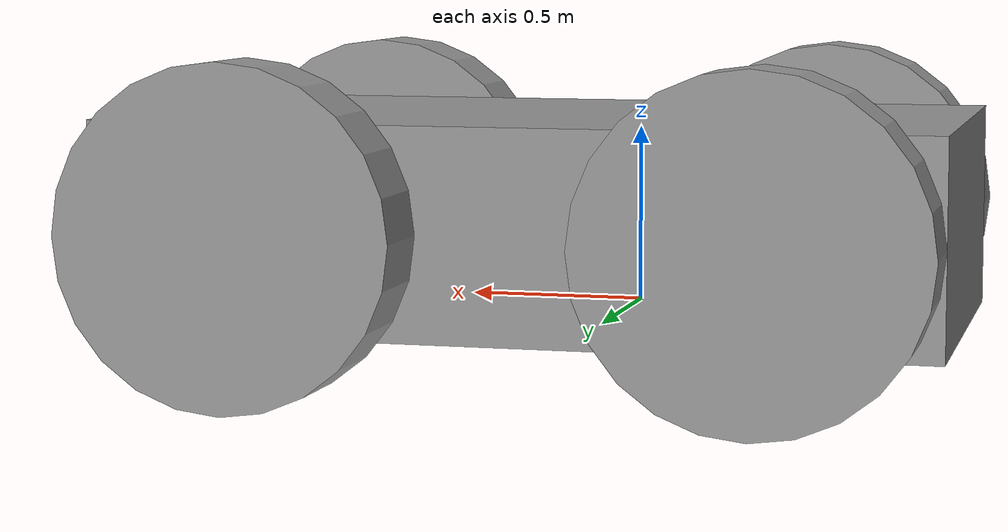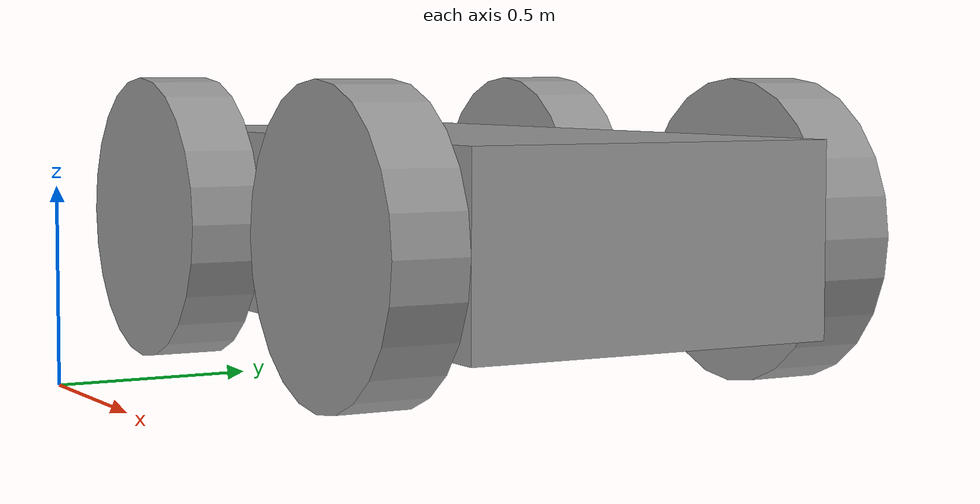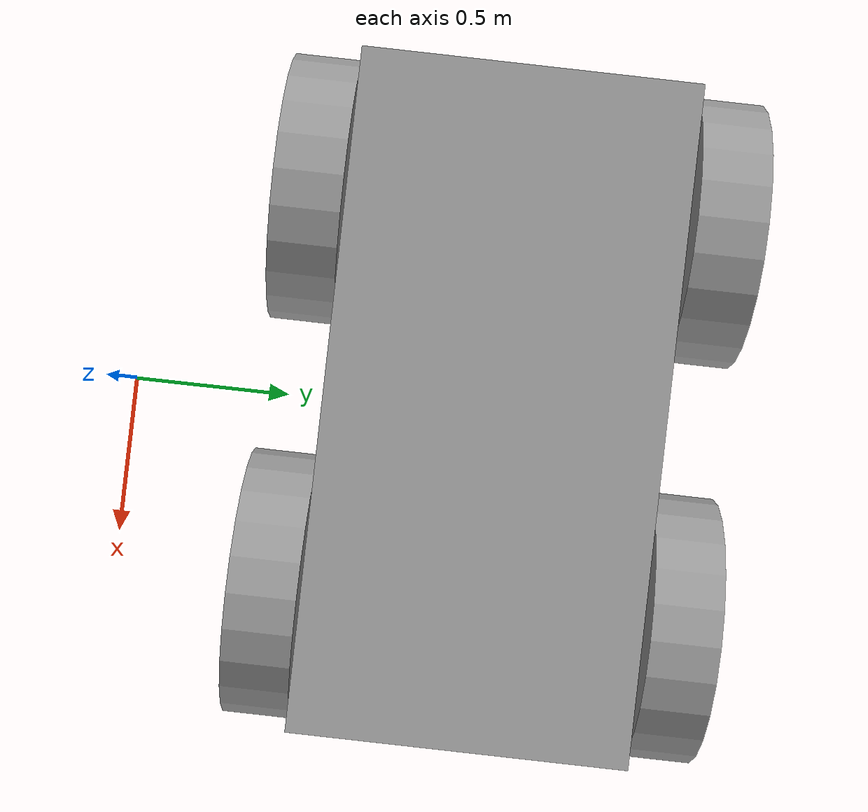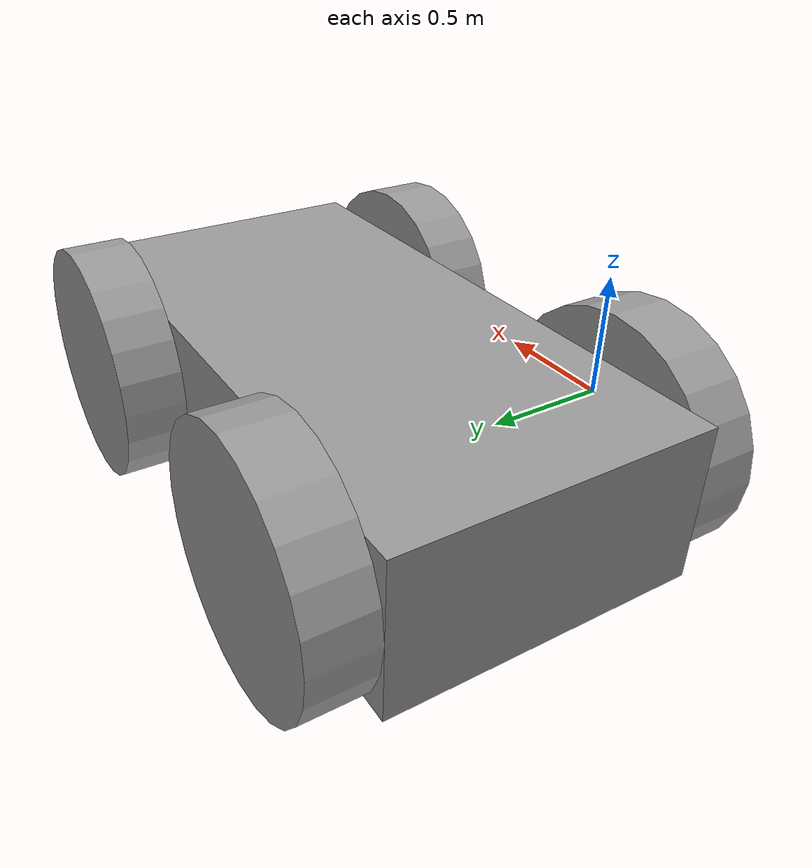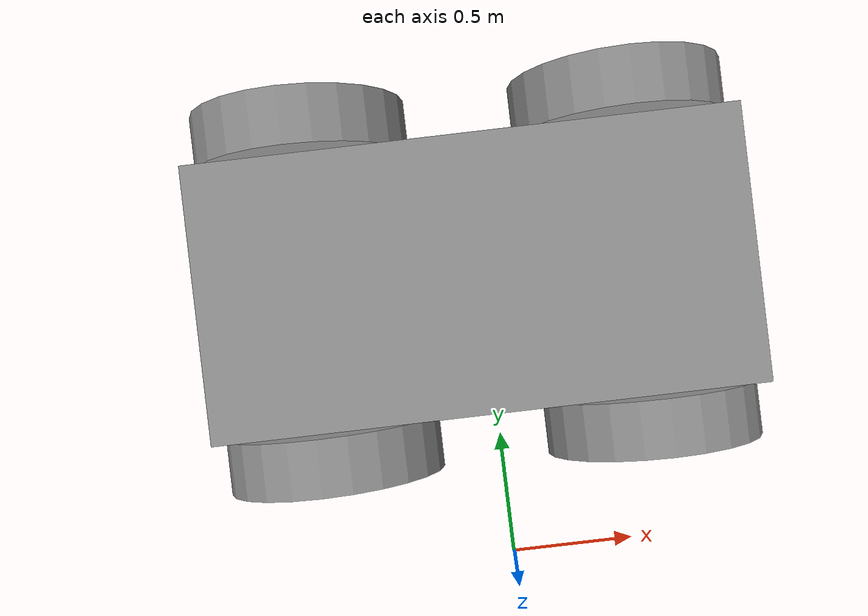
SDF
<?xml version='1.0'?>
<sdf version='1.6'>
  <model name='fourwheeled'>
    <link name='chasis'>
      <pose frame=''>-0.029032 1.14923 0.369998 0 -0 0</pose>
      <inertial>
        <mass>1</mass>
        <inertia>
          <ixx>0.166667</ixx>
          <ixy>0</ixy>
          <ixz>0</ixz>
          <iyy>0.166667</iyy>
          <iyz>0</iyz>
          <izz>0.166667</izz>
        </inertia>
        <pose frame=''>0 0 0 0 -0 0</pose>
      </inertial>
      <gravity>1</gravity>
      <self_collide>0</self_collide>
      <kinematic>0</kinematic>
      <visual name='visual'>
        <pose frame=''>0 0 0 0 -0 0</pose>
        <geometry>
          <box>
            <size>2 1 0.5</size>
          </box>
        </geometry>
        <material>
          <lighting>1</lighting>
          <script>
            <uri>file://media/materials/scripts/gazebo.material</uri>
            <name>Gazebo/Grey</name>
          </script>
          <shader type='pixel'>
            <normal_map>__default__</normal_map>
          </shader>
          <ambient>0.3 0.3 0.3 1</ambient>
          <diffuse>0.7 0.7 0.7 1</diffuse>
          <specular>0.01 0.01 0.01 1</specular>
          <emissive>0 0 0 1</emissive>
        </material>
        <transparency>0</transparency>
        <cast_shadows>1</cast_shadows>
      </visual>
      <collision name='collision'>
        <laser_retro>0</laser_retro>
        <max_contacts>10</max_contacts>
        <pose frame=''>0 0 0 0 -0 0</pose>
        <geometry>
          <box>
            <size>2 1 0.5</size>
          </box>
        </geometry>
        <surface>
          <friction>
            <ode>
              <mu>1</mu>
              <mu2>1</mu2>
              <fdir1>0 0 0</fdir1>
              <slip1>0</slip1>
              <slip2>0</slip2>
            </ode>
            <torsional>
              <coefficient>1</coefficient>
              <patch_radius>0</patch_radius>
              <surface_radius>0</surface_radius>
              <use_patch_radius>1</use_patch_radius>
              <ode>
                <slip>0</slip>
              </ode>
            </torsional>
          </friction>
          <bounce>
            <restitution_coefficient>0</restitution_coefficient>
            <threshold>1e+06</threshold>
          </bounce>
          <contact>
            <collide_without_contact>0</collide_without_contact>
            <collide_without_contact_bitmask>1</collide_without_contact_bitmask>
            <collide_bitmask>1</collide_bitmask>
            <ode>
              <soft_cfm>0</soft_cfm>
              <soft_erp>0.2</soft_erp>
              <kp>1e+13</kp>
              <kd>1</kd>
              <max_vel>0.01</max_vel>
              <min_depth>0</min_depth>
            </ode>
            <bullet>
              <split_impulse>1</split_impulse>
              <split_impulse_penetration_threshold>-0.01</split_impulse_penetration_threshold>
              <soft_cfm>0</soft_cfm>
              <soft_erp>0.2</soft_erp>
              <kp>1e+13</kp>
              <kd>1</kd>
            </bullet>
          </contact>
        </surface>
      </collision>
    </link>
    <link name='leftbackwheel'>
      <pose frame=''>0.570968 0.549188 0.369996 1.5707 -0 0</pose>
      <inertial>
        <mass>1</mass>
        <inertia>
          <ixx>0.145833</ixx>
          <ixy>0</ixy>
          <ixz>0</ixz>
          <iyy>0.145833</iyy>
          <iyz>0</iyz>
          <izz>0.125</izz>
        </inertia>
        <pose frame=''>0 0 0 0 -0 0</pose>
      </inertial>
      <gravity>1</gravity>
      <self_collide>0</self_collide>
      <kinematic>0</kinematic>
      <visual name='visual'>
        <pose frame=''>0 0 0 0 -0 0</pose>
        <geometry>
          <cylinder>
            <radius>0.4</radius>
            <length>0.2</length>
          </cylinder>
        </geometry>
        <material>
          <lighting>1</lighting>
          <script>
            <uri>file://media/materials/scripts/gazebo.material</uri>
            <name>Gazebo/Grey</name>
          </script>
          <shader type='pixel'>
            <normal_map>__default__</normal_map>
          </shader>
          <ambient>0.3 0.3 0.3 1</ambient>
          <diffuse>0.7 0.7 0.7 1</diffuse>
          <specular>0.01 0.01 0.01 1</specular>
          <emissive>0 0 0 1</emissive>
        </material>
        <transparency>0</transparency>
        <cast_shadows>1</cast_shadows>
      </visual>
      <collision name='collision'>
        <laser_retro>0</laser_retro>
        <max_contacts>10</max_contacts>
        <pose frame=''>0 0 0 0 -0 0</pose>
        <geometry>
          <cylinder>
            <radius>0.4</radius>
            <length>0.2</length>
          </cylinder>
        </geometry>
        <surface>
          <friction>
            <ode>
              <mu>1</mu>
              <mu2>1</mu2>
              <fdir1>0 0 0</fdir1>
              <slip1>0</slip1>
              <slip2>0</slip2>
            </ode>
            <torsional>
              <coefficient>1</coefficient>
              <patch_radius>0</patch_radius>
              <surface_radius>0</surface_radius>
              <use_patch_radius>1</use_patch_radius>
              <ode>
                <slip>0</slip>
              </ode>
            </torsional>
          </friction>
          <bounce>
            <restitution_coefficient>0</restitution_coefficient>
            <threshold>1e+06</threshold>
          </bounce>
          <contact>
            <collide_without_contact>0</collide_without_contact>
            <collide_without_contact_bitmask>1</collide_without_contact_bitmask>
            <collide_bitmask>1</collide_bitmask>
            <ode>
              <soft_cfm>0</soft_cfm>
              <soft_erp>0.2</soft_erp>
              <kp>1e+13</kp>
              <kd>1</kd>
              <max_vel>0.01</max_vel>
              <min_depth>0</min_depth>
            </ode>
            <bullet>
              <split_impulse>1</split_impulse>
              <split_impulse_penetration_threshold>-0.01</split_impulse_penetration_threshold>
              <soft_cfm>0</soft_cfm>
              <soft_erp>0.2</soft_erp>
              <kp>1e+13</kp>
              <kd>1</kd>
            </bullet>
          </contact>
        </surface>
      </collision>
    </link>
    <link name='rightfrontwheel'>
      <pose frame=''>-0.629032 1.749188 0.369998 1.5707 -0 0</pose>
      <inertial>
        <mass>1</mass>
        <inertia>
          <ixx>0.145833</ixx>
          <ixy>0</ixy>
          <ixz>0</ixz>
          <iyy>0.145833</iyy>
          <iyz>0</iyz>
          <izz>0.125</izz>
        </inertia>
        <pose frame=''>0 0 0 0 -0 0</pose>
      </inertial>
      <self_collide>0</self_collide>
      <kinematic>0</kinematic>
      <visual name='visual'>
        <pose frame=''>0 0 0 0 -0 0</pose>
        <geometry>
          <cylinder>
            <radius>0.4</radius>
            <length>0.2</length>
          </cylinder>
        </geometry>
        <material>
          <lighting>1</lighting>
          <script>
            <uri>file://media/materials/scripts/gazebo.material</uri>
            <name>Gazebo/Grey</name>
          </script>
          <shader type='pixel'>
            <normal_map>__default__</normal_map>
          </shader>
          <ambient>0.3 0.3 0.3 1</ambient>
          <diffuse>0.7 0.7 0.7 1</diffuse>
          <specular>0.01 0.01 0.01 1</specular>
          <emissive>0 0 0 1</emissive>
        </material>
        <transparency>0</transparency>
        <cast_shadows>1</cast_shadows>
      </visual>
      <collision name='collision'>
        <laser_retro>0</laser_retro>
        <max_contacts>10</max_contacts>
        <pose frame=''>0 0 0 0 -0 0</pose>
        <geometry>
          <cylinder>
            <radius>0.4</radius>
            <length>0.2</length>
          </cylinder>
        </geometry>
        <surface>
          <friction>
            <ode>
              <mu>1</mu>
              <mu2>1</mu2>
              <fdir1>0 0 0</fdir1>
              <slip1>0</slip1>
              <slip2>0</slip2>
            </ode>
            <torsional>
              <coefficient>1</coefficient>
              <patch_radius>0</patch_radius>
              <surface_radius>0</surface_radius>
              <use_patch_radius>1</use_patch_radius>
              <ode>
                <slip>0</slip>
              </ode>
            </torsional>
          </friction>
          <bounce>
            <restitution_coefficient>0</restitution_coefficient>
            <threshold>1e+06</threshold>
          </bounce>
          <contact>
            <collide_without_contact>0</collide_without_contact>
            <collide_without_contact_bitmask>1</collide_without_contact_bitmask>
            <collide_bitmask>1</collide_bitmask>
            <ode>
              <soft_cfm>0</soft_cfm>
              <soft_erp>0.2</soft_erp>
              <kp>1e+13</kp>
              <kd>1</kd>
              <max_vel>0.01</max_vel>
              <min_depth>0</min_depth>
            </ode>
            <bullet>
              <split_impulse>1</split_impulse>
              <split_impulse_penetration_threshold>-0.01</split_impulse_penetration_threshold>
              <soft_cfm>0</soft_cfm>
              <soft_erp>0.2</soft_erp>
              <kp>1e+13</kp>
              <kd>1</kd>
            </bullet>
          </contact>
        </surface>
      </collision>
    </link>
    <link name='leftfrontwheel'>
      <pose frame=''>-0.629032 0.549188 0.369998 1.5707 -0 0</pose>
      <inertial>
        <mass>1</mass>
        <inertia>
          <ixx>0.145833</ixx>
          <ixy>0</ixy>
          <ixz>0</ixz>
          <iyy>0.145833</iyy>
          <iyz>0</iyz>
          <izz>0.125</izz>
        </inertia>
        <pose frame=''>0 0 0 0 -0 0</pose>
      </inertial>
      <self_collide>0</self_collide>
      <kinematic>0</kinematic>
      <gravity>1</gravity>
      <visual name='visual'>
        <pose frame=''>0 0 0 0 -0 0</pose>
        <geometry>
          <cylinder>
            <radius>0.4</radius>
            <length>0.2</length>
          </cylinder>
        </geometry>
        <material>
          <lighting>1</lighting>
          <script>
            <uri>file://media/materials/scripts/gazebo.material</uri>
            <name>Gazebo/Grey</name>
          </script>
          <shader type='pixel'>
            <normal_map>__default__</normal_map>
          </shader>
          <ambient>0.3 0.3 0.3 1</ambient>
          <diffuse>0.7 0.7 0.7 1</diffuse>
          <specular>0.01 0.01 0.01 1</specular>
          <emissive>0 0 0 1</emissive>
        </material>
        <transparency>0</transparency>
        <cast_shadows>1</cast_shadows>
      </visual>
      <collision name='collision'>
        <laser_retro>0</laser_retro>
        <max_contacts>10</max_contacts>
        <pose frame=''>0 0 0 0 -0 0</pose>
        <geometry>
          <cylinder>
            <radius>0.4</radius>
            <length>0.2</length>
          </cylinder>
        </geometry>
        <surface>
          <friction>
            <ode>
              <mu>1</mu>
              <mu2>1</mu2>
              <fdir1>0 0 0</fdir1>
              <slip1>0</slip1>
              <slip2>0</slip2>
            </ode>
            <torsional>
              <coefficient>1</coefficient>
              <patch_radius>0</patch_radius>
              <surface_radius>0</surface_radius>
              <use_patch_radius>1</use_patch_radius>
              <ode>
                <slip>0</slip>
              </ode>
            </torsional>
          </friction>
          <bounce>
            <restitution_coefficient>0</restitution_coefficient>
            <threshold>1e+06</threshold>
          </bounce>
          <contact>
            <collide_without_contact>0</collide_without_contact>
            <collide_without_contact_bitmask>1</collide_without_contact_bitmask>
            <collide_bitmask>1</collide_bitmask>
            <ode>
              <soft_cfm>0</soft_cfm>
              <soft_erp>0.2</soft_erp>
              <kp>1e+13</kp>
              <kd>1</kd>
              <max_vel>0.01</max_vel>
              <min_depth>0</min_depth>
            </ode>
            <bullet>
              <split_impulse>1</split_impulse>
              <split_impulse_penetration_threshold>-0.01</split_impulse_penetration_threshold>
              <soft_cfm>0</soft_cfm>
              <soft_erp>0.2</soft_erp>
              <kp>1e+13</kp>
              <kd>1</kd>
            </bullet>
          </contact>
        </surface>
      </collision>
    </link>
    <link name='rigthbackwheel'>
      <pose frame=''>0.570968 1.749188 0.369998 1.5707 -0 0</pose>
      <inertial>
        <mass>1</mass>
        <inertia>
          <ixx>0.145833</ixx>
          <ixy>0</ixy>
          <ixz>0</ixz>
          <iyy>0.145833</iyy>
          <iyz>0</iyz>
          <izz>0.125</izz>
        </inertia>
        <pose frame=''>0 0 0 0 -0 0</pose>
      </inertial>
      <self_collide>0</self_collide>
      <kinematic>0</kinematic>
      <visual name='visual'>
        <pose frame=''>0 0 0 0 -0 0</pose>
        <geometry>
          <cylinder>
            <radius>0.4</radius>
            <length>0.2</length>
          </cylinder>
        </geometry>
        <material>
          <lighting>1</lighting>
          <script>
            <uri>file://media/materials/scripts/gazebo.material</uri>
            <name>Gazebo/Grey</name>
          </script>
          <shader type='pixel'>
            <normal_map>__default__</normal_map>
          </shader>
          <ambient>0.3 0.3 0.3 1</ambient>
          <diffuse>0.7 0.7 0.7 1</diffuse>
          <specular>0.01 0.01 0.01 1</specular>
          <emissive>0 0 0 1</emissive>
        </material>
        <transparency>0</transparency>
        <cast_shadows>1</cast_shadows>
      </visual>
      <collision name='collision'>
        <laser_retro>0</laser_retro>
        <max_contacts>10</max_contacts>
        <pose frame=''>0 0 0 0 -0 0</pose>
        <geometry>
          <cylinder>
            <radius>0.4</radius>
            <length>0.2</length>
          </cylinder>
        </geometry>
        <surface>
          <friction>
            <ode>
              <mu>1</mu>
              <mu2>1</mu2>
              <fdir1>0 0 0</fdir1>
              <slip1>0</slip1>
              <slip2>0</slip2>
            </ode>
            <torsional>
              <coefficient>1</coefficient>
              <patch_radius>0</patch_radius>
              <surface_radius>0</surface_radius>
              <use_patch_radius>1</use_patch_radius>
              <ode>
                <slip>0</slip>
              </ode>
            </torsional>
          </friction>
          <bounce>
            <restitution_coefficient>0</restitution_coefficient>
            <threshold>1e+06</threshold>
          </bounce>
          <contact>
            <collide_without_contact>0</collide_without_contact>
            <collide_without_contact_bitmask>1</collide_without_contact_bitmask>
            <collide_bitmask>1</collide_bitmask>
            <ode>
              <soft_cfm>0</soft_cfm>
              <soft_erp>0.2</soft_erp>
              <kp>1e+13</kp>
              <kd>1</kd>
              <max_vel>0.01</max_vel>
              <min_depth>0</min_depth>
            </ode>
            <bullet>
              <split_impulse>1</split_impulse>
              <split_impulse_penetration_threshold>-0.01</split_impulse_penetration_threshold>
              <soft_cfm>0</soft_cfm>
              <soft_erp>0.2</soft_erp>
              <kp>1e+13</kp>
              <kd>1</kd>
            </bullet>
          </contact>
        </surface>
      </collision>
    </link>
    <joint name='chasis_JOINT_0' type='revolute'>
      <parent>chasis</parent>
      <child>leftfrontwheel</child>
      <pose frame=''>0 0 0 0 -0 0</pose>
      <axis>
        <xyz>0 0 1</xyz>
        <use_parent_model_frame>0</use_parent_model_frame>
        <limit>
          <lower>-1.79769e+308</lower>
          <upper>1.79769e+308</upper>
          <effort>-1</effort>
          <velocity>-1</velocity>
        </limit>
        <dynamics>
          <spring_reference>0</spring_reference>
          <spring_stiffness>0</spring_stiffness>
          <damping>0</damping>
        </dynamics>
      </axis>
      <physics>
        <ode>
          <limit>
            <cfm>0</cfm>
            <erp>0.2</erp>
          </limit>
          <suspension>
            <cfm>0</cfm>
            <erp>0.2</erp>
          </suspension>
        </ode>
      </physics>
    </joint>
    <joint name='chasis_JOINT_1' type='revolute'>
      <parent>chasis</parent>
      <child>leftbackwheel</child>
      <pose frame=''>0 0 0 0 -0 0</pose>
      <axis>
        <xyz>0 0 1</xyz>
        <use_parent_model_frame>0</use_parent_model_frame>
        <limit>
          <lower>-1.79769e+308</lower>
          <upper>1.79769e+308</upper>
          <effort>-1</effort>
          <velocity>-1</velocity>
        </limit>
        <dynamics>
          <spring_reference>0</spring_reference>
          <spring_stiffness>0</spring_stiffness>
          <damping>0</damping>
        </dynamics>
      </axis>
      <physics>
        <ode>
          <limit>
            <cfm>0</cfm>
            <erp>0.2</erp>
          </limit>
          <suspension>
            <cfm>0</cfm>
            <erp>0.2</erp>
          </suspension>
        </ode>
      </physics>
    </joint>
    <joint name='chasis_JOINT_2' type='revolute'>
      <parent>chasis</parent>
      <child>rightfrontwheel</child>
      <pose frame=''>0 0 0 0 -0 0</pose>
      <axis>
        <xyz>0 0 1</xyz>
        <use_parent_model_frame>0</use_parent_model_frame>
        <limit>
          <lower>-1.79769e+308</lower>
          <upper>1.79769e+308</upper>
          <effort>-1</effort>
          <velocity>-1</velocity>
        </limit>
        <dynamics>
          <spring_reference>0</spring_reference>
          <spring_stiffness>0</spring_stiffness>
          <damping>0</damping>
        </dynamics>
      </axis>
      <physics>
        <ode>
          <limit>
            <cfm>0</cfm>
            <erp>0.2</erp>
          </limit>
          <suspension>
            <cfm>0</cfm>
            <erp>0.2</erp>
          </suspension>
        </ode>
      </physics>
    </joint>
    <joint name='chasis_JOINT_3' type='revolute'>
      <parent>chasis</parent>
      <child>rigthbackwheel</child>
      <pose frame=''>0 0 0 0 -0 0</pose>
      <axis>
        <xyz>0 0 1</xyz>
        <use_parent_model_frame>0</use_parent_model_frame>
        <limit>
          <lower>-1.79769e+308</lower>
          <upper>1.79769e+308</upper>
          <effort>-1</effort>
          <velocity>-1</velocity>
        </limit>
        <dynamics>
          <spring_reference>0</spring_reference>
          <spring_stiffness>0</spring_stiffness>
          <damping>0</damping>
        </dynamics>
      </axis>
      <physics>
        <ode>
          <limit>
            <cfm>0</cfm>
            <erp>0.2</erp>
          </limit>
          <suspension>
            <cfm>0</cfm>
            <erp>0.2</erp>
          </suspension>
        </ode>
      </physics>
    </joint>
    <static>0</static>
    <allow_auto_disable>1</allow_auto_disable>
  </model>
</sdf>
